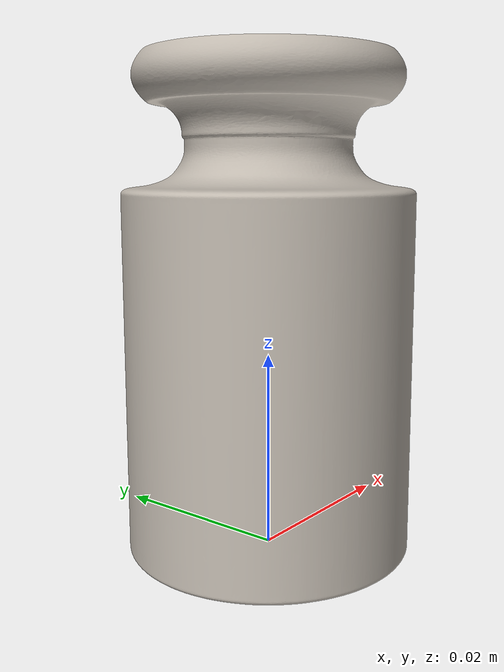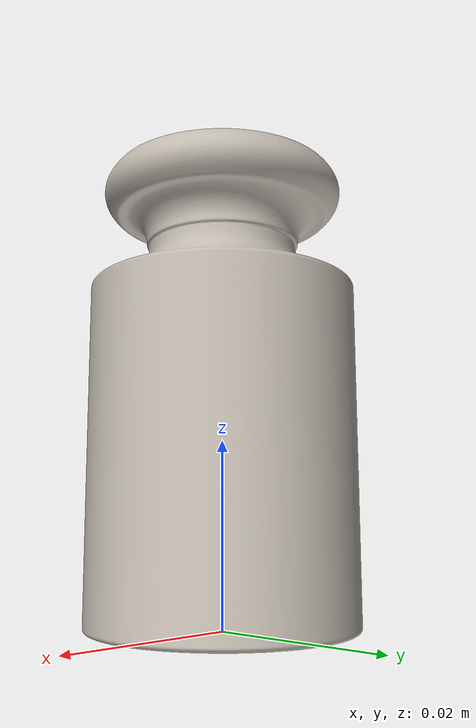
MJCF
<?xml version="1.0" ?>
<!-- @bbox dx=0.0289 dy=0.0289 dz=0.0500 -->
<mujoco model="weight">
  <asset>
    <texture type="2d" name="Material.001" file="Material.001.png"/>
    <material name="Material.001" texture="Material.001" specular="0.4000000000000001" shininess="0.001"/>
    <mesh file="weight.obj" scale="0.0474369826724277 0.0474369826724277 0.0474369826724277"/>
    <mesh file="weight/weight_collision_0.obj" scale="0.0474369826724277 0.0474369826724277 0.0474369826724277"/>
    <mesh file="weight/weight_collision_1.obj" scale="0.0474369826724277 0.0474369826724277 0.0474369826724277"/>
    <mesh file="weight/weight_collision_2.obj" scale="0.0474369826724277 0.0474369826724277 0.0474369826724277"/>
    <mesh file="weight/weight_collision_3.obj" scale="0.0474369826724277 0.0474369826724277 0.0474369826724277"/>
  </asset>
  <worldbody>
    <body name="weight">
      <inertial pos="0 0 0.025000" mass="0.02" diaginertia="0.0008 0.0008 0.0005"/>
      <geom material="Material.001" mesh="weight" class="visual"/>
      <geom mesh="weight_collision_0"  class="collision"/>
      <geom mesh="weight_collision_1"  class="collision"/>
      <geom mesh="weight_collision_2"  class="collision"/>
      <geom mesh="weight_collision_3"  class="collision"/>
          <site class="grasppoint" group="4" pos="0.0000 0.0000 0.0300"/>
      <site class="boundpoint" group="3" name="bnd_p0"   pos="-0.0145 -0.0145 0.0000"/>
      <site class="boundpoint" group="3" name="bnd_px"   pos="0.0145 -0.0145 0.0000"/>
      <site class="boundpoint" group="3" name="bnd_py"   pos="-0.0145 0.0145 0.0000"/>
      <site class="boundpoint" group="3" name="bnd_pxy"  pos="0.0145 0.0145 0.0000"/>
      <site class="boundpoint" group="3" name="bnd_pz"   pos="-0.0145 -0.0145 0.0500"/>
      <site class="boundpoint" group="3" name="bnd_pxz"  pos="0.0145 -0.0145 0.0500"/>
      <site class="boundpoint" group="3" name="bnd_pyz"  pos="-0.0145 0.0145 0.0500"/>
      <site class="boundpoint" group="3" name="bnd_pxyz" pos="0.0145 0.0145 0.0500"/>
      <site name="top_site" pos="0 0 0.0500" size="0.01" rgba="1 0 0 0"/>
      <site name="bottom_site" pos="0 0 0" size="0.01" rgba="0 1 0 0"/>
</body>
  </worldbody>
  <compiler boundmass="0.015" boundinertia="1e-05" angle="radian"/>
  <default>
    <default class="visual">
      <geom group="2" type="mesh" contype="0" conaffinity="0" density="50"/>
    </default>
    <default class="collision">
      <geom group="3" type="mesh" density="50" friction="1.5 0.1 0.1" solimp="0.9 0.95 0.001" solref="0.02 1"/>
    </default>
    <default class="grasppoint">
      <site type="sphere" size="0.005" group="4" rgba="0 0 1 1"/>
    </default>
        <default class="boundpoint"><site type="sphere" size="0.01" group="3" rgba="1 0 0 1"/></default>
      <default class="placepoint"><site type="sphere" size="0.01" group="2" rgba="0 0 1 0"/></default>
</default>
</mujoco>
